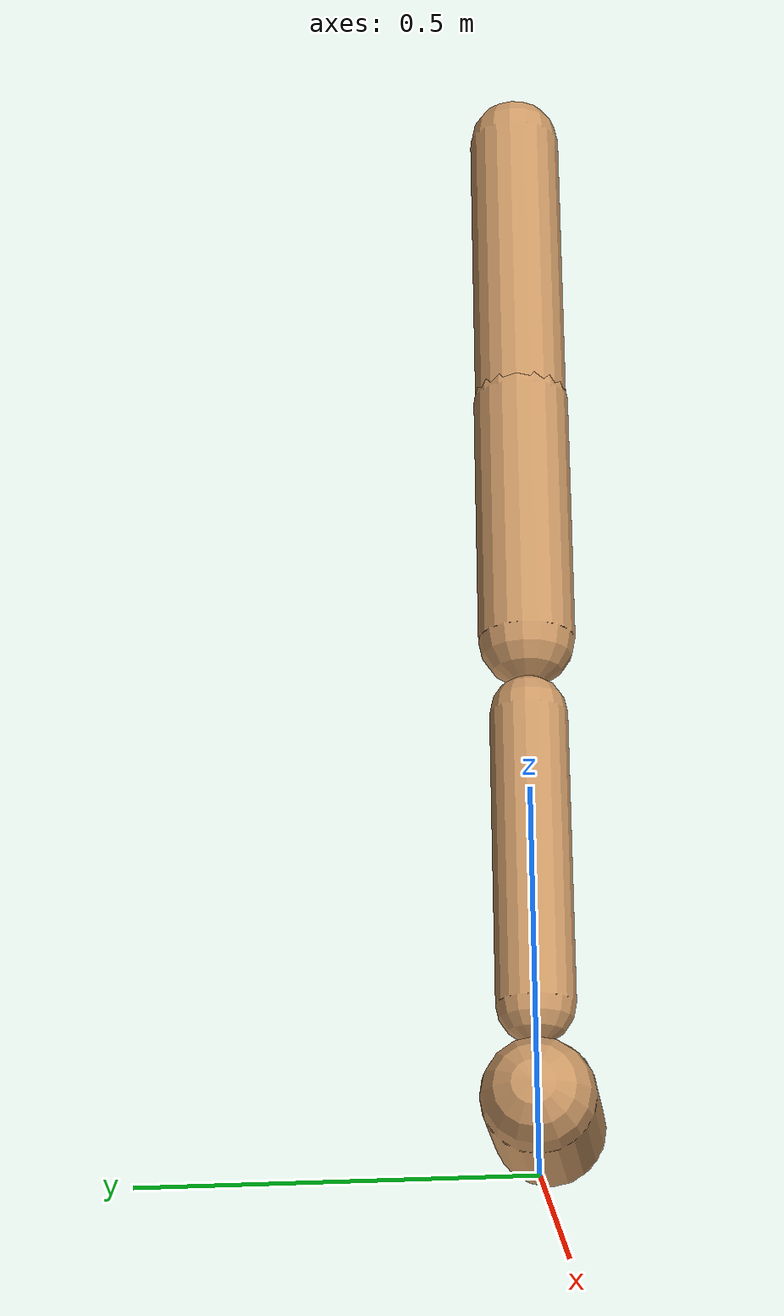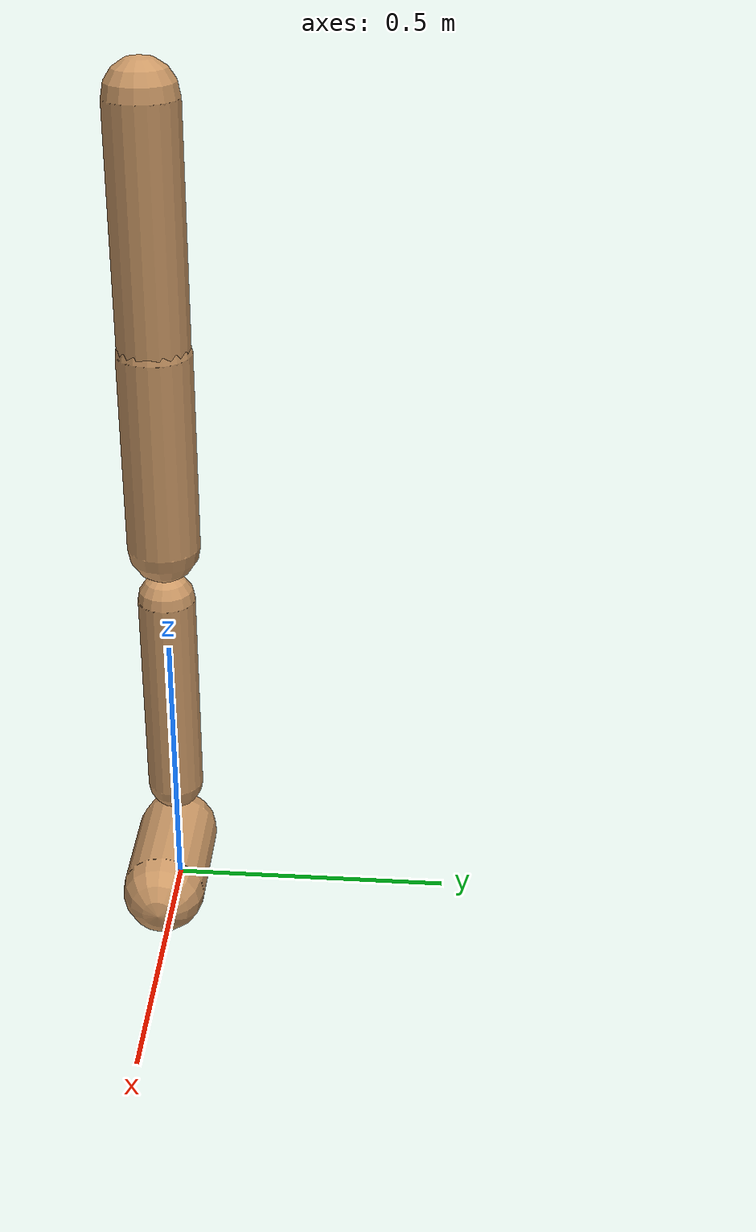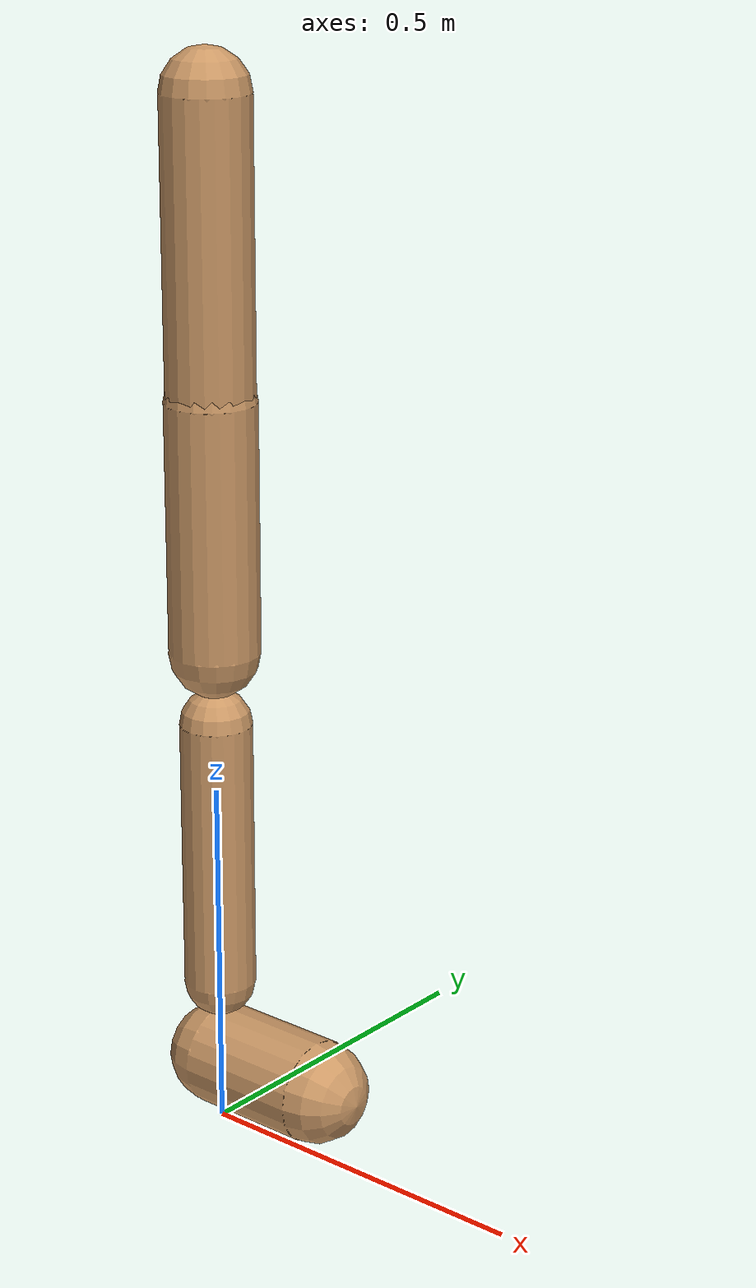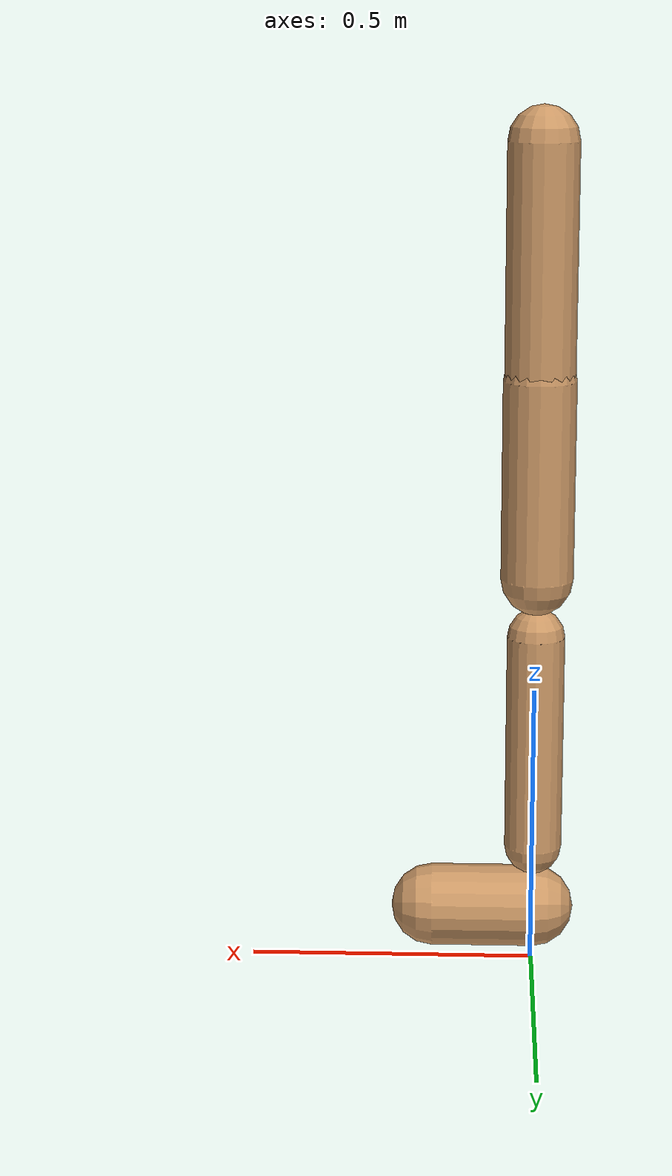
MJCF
<mujoco model="walker2d">
  <compiler angle="degree" coordinate="global" inertiafromgeom="true" />
  <default>
    <joint armature="0.01" damping=".1" limited="true" />
    <geom conaffinity="0" condim="3" contype="1" density="1000" friction="0.8 .1 .1" rgba="0.8 0.6 .4 1" />
  </default>
  <option integrator="RK4" timestep="0.002" />
  <worldbody>

    <body name="torso" pos="0 0 -0.21826961149208324">
      <joint armature="0" axis="1 0 0" damping="0" limited="false" name="ignorex" pos="0 0 0" stiffness="0" type="slide" />
      <joint armature="0" axis="0 0 1" damping="0" limited="false" name="ignorez" pos="0 0 0" ref="1.25" stiffness="0" type="slide" />
      <joint armature="0" axis="0 1 0" damping="0" limited="false" name="ignorey" pos="0 0 0" stiffness="0" type="hinge" />
      <geom fromto="0 0 1.45 0 0 1.05" name="torso_geom" size="0.06054066823120087" type="capsule" />
      <body name="thigh">
        <joint axis="0 -1 0" name="thigh_joint" pos="0 0 1.05" range="-150 0" type="hinge" />
        <geom fromto="0.0 0.0 1.05 0.0 0.0 0.7033908686015131" name="thigh_geom" size="0.06280731019853987" type="capsule" />
        <body name="leg" pos="0.0 0.0 0.10339086860151314">
          <joint axis="0 -1 0" name="leg_joint" pos="0 0 0.6" range="-150 0" type="hinge" />
          <geom fromto="0.0 0.0 0.6 0.0 0.0 0.21487874289057013" name="leg_geom" size="0.050245848158831895" type="capsule" />
          <body name="foot" pos="0.0 0.0 0.11487874289057012">
            <joint axis="0 -1 0" name="foot_joint" pos="0 0 0.1" range="-45 45" type="hinge" />
            <geom fromto="0.0 0.0 0.1 0.17821736942239064 0.0 0.1" name="foot_geom" size="0.07243298704750055" type="capsule" />
          </body>
        </body>
      </body>

      <body name="thigh_left">
        <joint axis="0 -1 0" name="thigh_left_joint" pos="0 0 1.05" range="-150 0" type="hinge" />
        <geom fromto="0.0 0.0 1.05 0.0 0.0 0.7033908686015131" name="thigh_left_geom" rgba=".7 .3 .6 1" size="0.06280731019853987" type="capsule" />
        <body name="leg_left" pos="0.0 0.0 0.10339086860151314">
          <joint axis="0 -1 0" name="leg_left_joint" pos="0 0 0.6" range="-150 0" type="hinge" />
          <geom fromto="0.0 0.0 0.6 0.0 0.0 0.21487874289057013" name="leg_left_geom" rgba=".7 .3 .6 1" size="0.050245848158831895" type="capsule" />
          <body name="foot_left" pos="0.0 0.0 0.11487874289057012">
            <joint axis="0 -1 0" name="foot_left_joint" pos="0 0 0.1" range="-45 45" type="hinge" />
            <geom fromto="0.0 0.0 0.1 0.17821736942239064 0.0 0.1" name="foot_left_geom" rgba=".7 .3 .6 1" size="0.07243298704750055" type="capsule" />
          </body>
        </body>
      </body>
    </body>
  </worldbody>
  <actuator>

    <motor ctrllimited="true" ctrlrange="-1.0 1.0" gear="100" joint="thigh_joint" />
    <motor ctrllimited="true" ctrlrange="-1.0 1.0" gear="100" joint="leg_joint" />
    <motor ctrllimited="true" ctrlrange="-1.0 1.0" gear="100" joint="foot_joint" />
    <motor ctrllimited="true" ctrlrange="-1.0 1.0" gear="100" joint="thigh_left_joint" />
    <motor ctrllimited="true" ctrlrange="-1.0 1.0" gear="100" joint="leg_left_joint" />
    <motor ctrllimited="true" ctrlrange="-1.0 1.0" gear="100" joint="foot_left_joint" />

  </actuator>
</mujoco>
